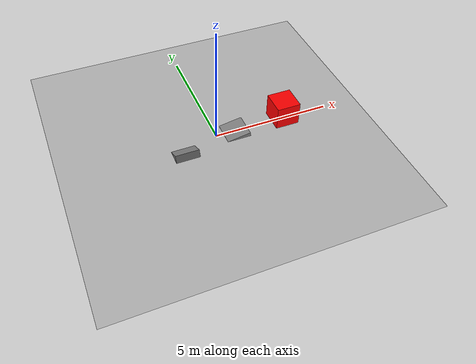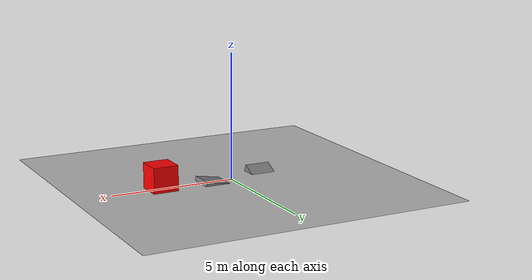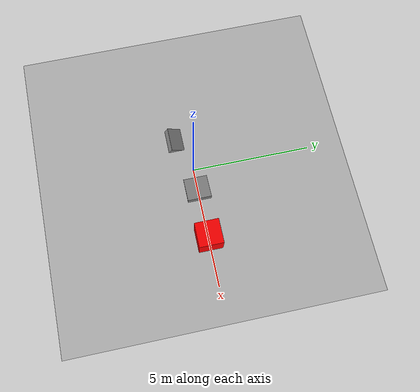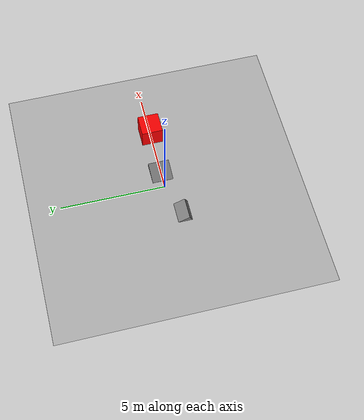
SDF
<?xml version="1.0" encoding="UTF-8"?>
<sdf version='1.9'>
  <world name='calibration'>
    <physics type="ode">
      <max_step_size>0.004</max_step_size>
      <real_time_factor>1.0</real_time_factor>
      <real_time_update_rate>250</real_time_update_rate>
    </physics>
    <gravity>0 0 -9.8</gravity>
    <magnetic_field>6e-06 2.3e-05 -4.2e-05</magnetic_field>
    <atmosphere type="adiabatic"/>
    <scene>
      <grid>false</grid>
      <ambient>0.4 0.4 0.4 1</ambient>
      <background>0.7 0.7 0.7 1</background>
      <shadows>true</shadows>
    </scene>

    <include>
      <uri>model://checker</uri>
      <name>checker_plane</name>
      <pose>0 0 0 0 0 0 </pose>
    </include>

    <model name="box0">
      <static>true</static>
      <pose>2.5 0.0 0.005 0 0 0</pose>
      <link name="link">
        <collision name="collision">
          <pose>0 0 0 0 0 0</pose>
          <geometry>
            <box>
              <size>0.01 0.01 0.01</size>
            </box>
          </geometry>
        </collision>
        <visual name="visual">
          <pose>0 0 0 0 0 0</pose>
          <geometry>
            <box>
              <size>0.01 0.01 0.01</size>
            </box>
          </geometry>
          <material>
            <ambient>1.0 0.0 0.0 1</ambient>
            <diffuse>1.0 0.0 0.0 1</diffuse>
            <specular>1.0 0.0 0.0 1</specular>
          </material>
        </visual>
      </link>
    </model>

    <model name="box1">
      <static>true</static>
      <pose>3 0 0.5 0 0 0</pose>
      <link name="link">
        <collision name="collision">
          <pose>0 0 0 0 0 0</pose>
          <geometry>
            <box>
              <size>1 1 1</size>
            </box>
          </geometry>
        </collision>
        <visual name="visual">
          <pose>0 0 0 0 0 0</pose>
          <geometry>
            <box>
              <size>1 1 1</size>
            </box>
          </geometry>
          <material>
            <ambient>1.0 0.0 0.0 1</ambient>
            <diffuse>1.0 0.0 0.0 1</diffuse>
            <specular>1.0 0.0 0.0 1</specular>
          </material>
        </visual>
      </link>
    </model>

    <model name="ramp_pitch">
      <static>true</static>
      <pose>0.9 0 -0.4 0 1.4 0</pose>
      <link name="link">
        <collision name="collision">
          <pose>0 0 0 0 0 0</pose>
          <geometry>
            <box>
              <size>1 1 1</size>
            </box>
          </geometry>
        </collision>
        <visual name="visual">
          <pose>0 0 0 0 0 0</pose>
          <geometry>
            <box>
              <size>1 1 1</size>
            </box>
          </geometry>
          <material>
            <ambient>0.5 0.5 0.5 1</ambient>
            <diffuse>0.5 0.5 0.5 1</diffuse>
            <specular>0.5 0.5 0.5 1</specular>
          </material>
        </visual>
      </link>
    </model>

    <model name="ramp_roll">
      <static>true</static>
      <pose>-1.5 -0.5 -0.4 1.1 0 0</pose>
      <link name="link">
        <collision name="collision">
          <pose>0 0 0 0 0 0</pose>
          <geometry>
            <box>
              <size>1 1 1</size>
            </box>
          </geometry>
        </collision>
        <visual name="visual">
          <pose>0 0 0 0 0 0</pose>
          <geometry>
            <box>
              <size>1 1 1</size>
            </box>
          </geometry>
          <material>
            <ambient>0.5 0.5 0.5 1</ambient>
            <diffuse>0.5 0.5 0.5 1</diffuse>
            <specular>0.5 0.5 0.5 1</specular>
          </material>
        </visual>
      </link>
    </model>

    <light name='sunUTC' type='directional'>
      <pose>0 0 500 0 -0 0</pose>
      <cast_shadows>true</cast_shadows>
      <intensity>1</intensity>
      <direction>0.001 0.625 -0.78</direction>
      <diffuse>0.904 0.904 0.904 1</diffuse>
      <specular>0.271 0.271 0.271 1</specular>
      <attenuation>
        <range>2000</range>
        <linear>0</linear>
        <constant>1</constant>
        <quadratic>0</quadratic>
      </attenuation>
      <spot>
        <inner_angle>0</inner_angle>
        <outer_angle>0</outer_angle>
        <falloff>0</falloff>
      </spot>
    </light>
    <spherical_coordinates>
      <surface_model>EARTH_WGS84</surface_model>
      <world_frame_orientation>ENU</world_frame_orientation>
      <latitude_deg>47.397971057728974</latitude_deg>
      <longitude_deg> 8.546163739800146</longitude_deg>
      <elevation>0</elevation>
    </spherical_coordinates>
  </world>
</sdf>

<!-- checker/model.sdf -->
<sdf version="1.6">
  <model name="checker">
    <static>true</static>
    <link name="body">
      <visual name="visual">
        <geometry>
          <mesh>
            <uri>file:///home/user/workspace/PX4-Autopilot/Tools/simulation/gz/models/checker/media/checker.dae</uri>
          </mesh>
        </geometry>
      </visual>
      <collision name="visual">
        <geometry>
          <mesh>
            <uri>file:///home/user/workspace/PX4-Autopilot/Tools/simulation/gz/models/checker/media/checker.dae</uri>
          </mesh>
        </geometry>
        <surface>
          <friction>
            <ode/>
          </friction>
          <bounce/>
          <contact/>
          </surface>
      </collision>
      <enable_wind>false</enable_wind>
      <self_collide>false</self_collide>
    </link>
  </model>
</sdf>
